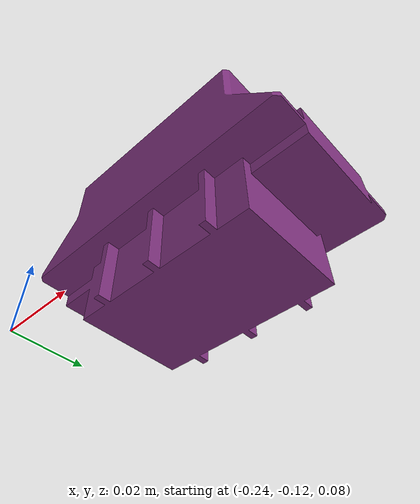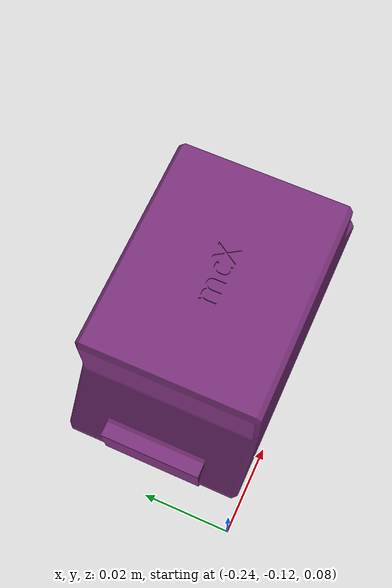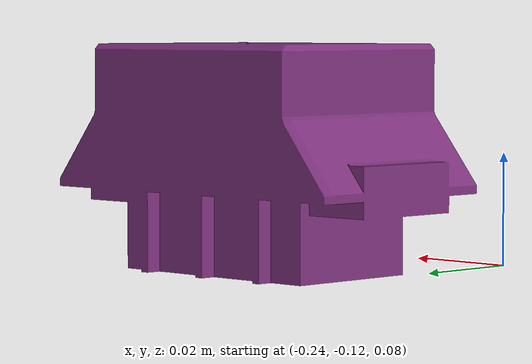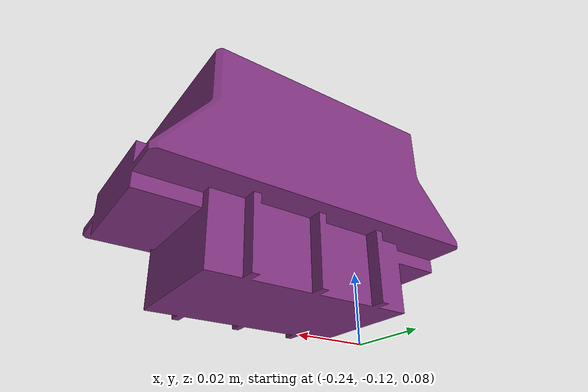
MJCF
<mujoco model="connector_m">
  <default>
    <default class="connector_m.visual">
      <geom type="mesh" group="1" mass="0.025" rgba="0 0 1 1"/>
    </default>
    <default class="connector_m.collision">
      <geom type="mesh" group="3" friction="0.5 5e-3 5e-4" mass="0" solref="0.004 1"/>
    </default>
  </default>
  <asset>
    <mesh name="connector_m" file="../common_assets/connector/mcX_m.stl" />
    <mesh name="connector_m_MESH" file="../common_assets/connector/mcX_m_collision_mcX_m_MESH.stl" />
  </asset>
  <worldbody>
    <body name="connector_m" pos="-.2 -0.1 0.1">
      <freejoint name="connector_m"/>
      <geom name="connector_m" group="1" type="mesh" contype="0" conaffinity="0" rgba="0.5 0.2 0.5 1" mesh="connector_m" />
      <geom name="connector_m_BOX" type="box" class="connector_m.collision" size="0.00077138969209045172 0.016199786216020584 0.010499864816665649" pos="1.705484464764595e-08 -1.1743395589292049e-08 -0.011897046118974686" />
      <geom name="connector_m_grip" type="box" class="connector_m.collision" size="0.024999681860208511 0.019499748945236206 0.0062637552618980408" pos="0 0 0.012838795781135559" />
      <site name="connector_m_grip" pos="0 0 0.012838795781135559" group="5" xyaxes="0 0 1 0 1 0"/>
      <geom name="connector_m_BOX.002" type="box" class="connector_m.collision" size="0.034999549388885498 0.019499748945236206 0.00074998883064836264" pos="-1.6398011837281956e-08 -1.8495484255254269e-08 -0.0066471174359321594" />
      <geom name="connector_m_BOX.003" type="box" class="connector_m.collision" size="0.034999549388885498 0.010999856516718864 0.0044999443925917149" pos="-3.875209486636777e-08 -1.6499583921358862e-08 -0.0058971233665943146" />
      <geom name="connector_m_BOX.004" type="box" class="connector_m.collision" size="0.022199714556336403 0.01319983322173357 0.010499864816665649" pos="-1.5333727176880529e-08 -1.5302044076292987e-08 -0.011897046118974686" />
      <geom name="connector_m_BOX.005" type="box" class="connector_m.collision" size="0.00077138969209045172 0.016199786216020584 0.010499864816665649" pos="-0.014285527169704437 -2.1056621335446835e-08 -0.011897046118974686" />
      <geom name="connector_m_BOX.006" type="box" class="connector_m.collision" size="0.00077138969209045172 0.016199786216020584 0.010499864816665649" pos="0.014285504817962646 -1.1743395589292049e-08 -0.011897046118974686" />
      <geom name="connector_m_MESH" type="mesh" mesh="connector_m_MESH" class="connector_m.collision" rgba="0.5 0.2 0.5 1" pos="-2.1853423959328211e-08 -1.8495484255254269e-08 0.00038930028676986694" />
      <site name="connector_m" group="3" type="box" size=".01 .01 .01" pos="0 0 -.018"/>
    </body>
  </worldbody>
</mujoco>
